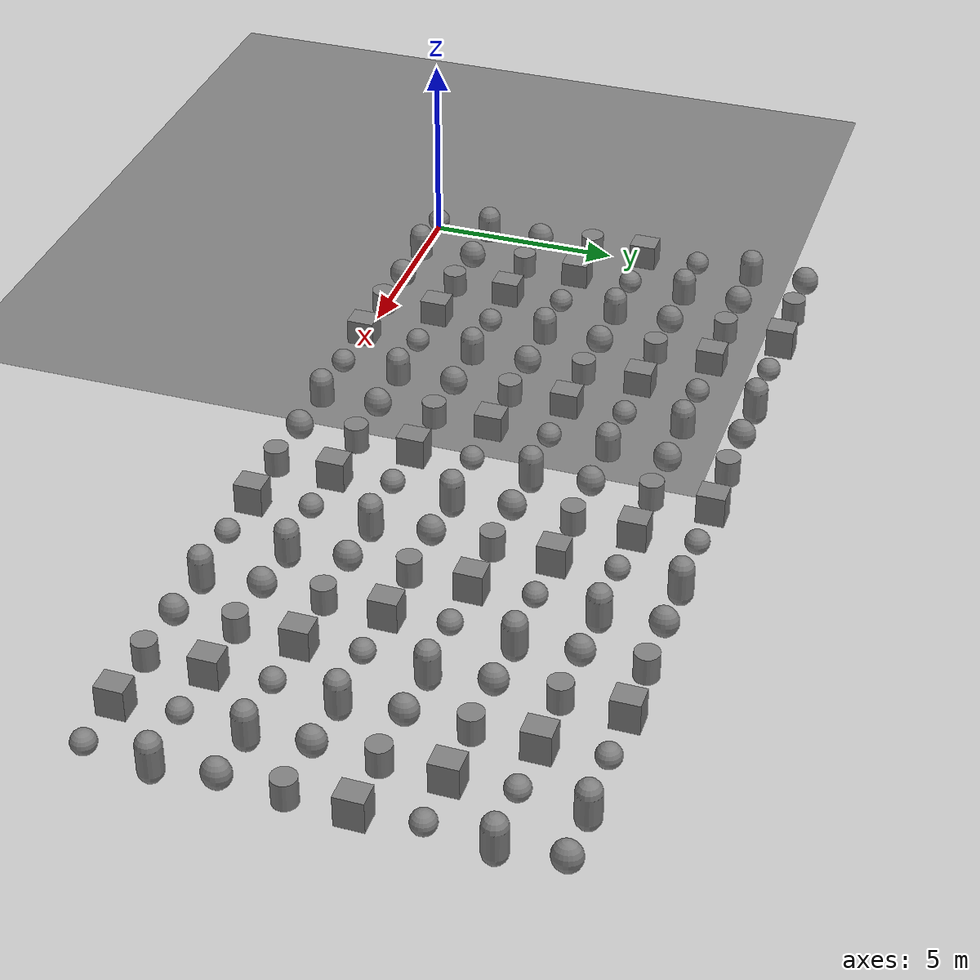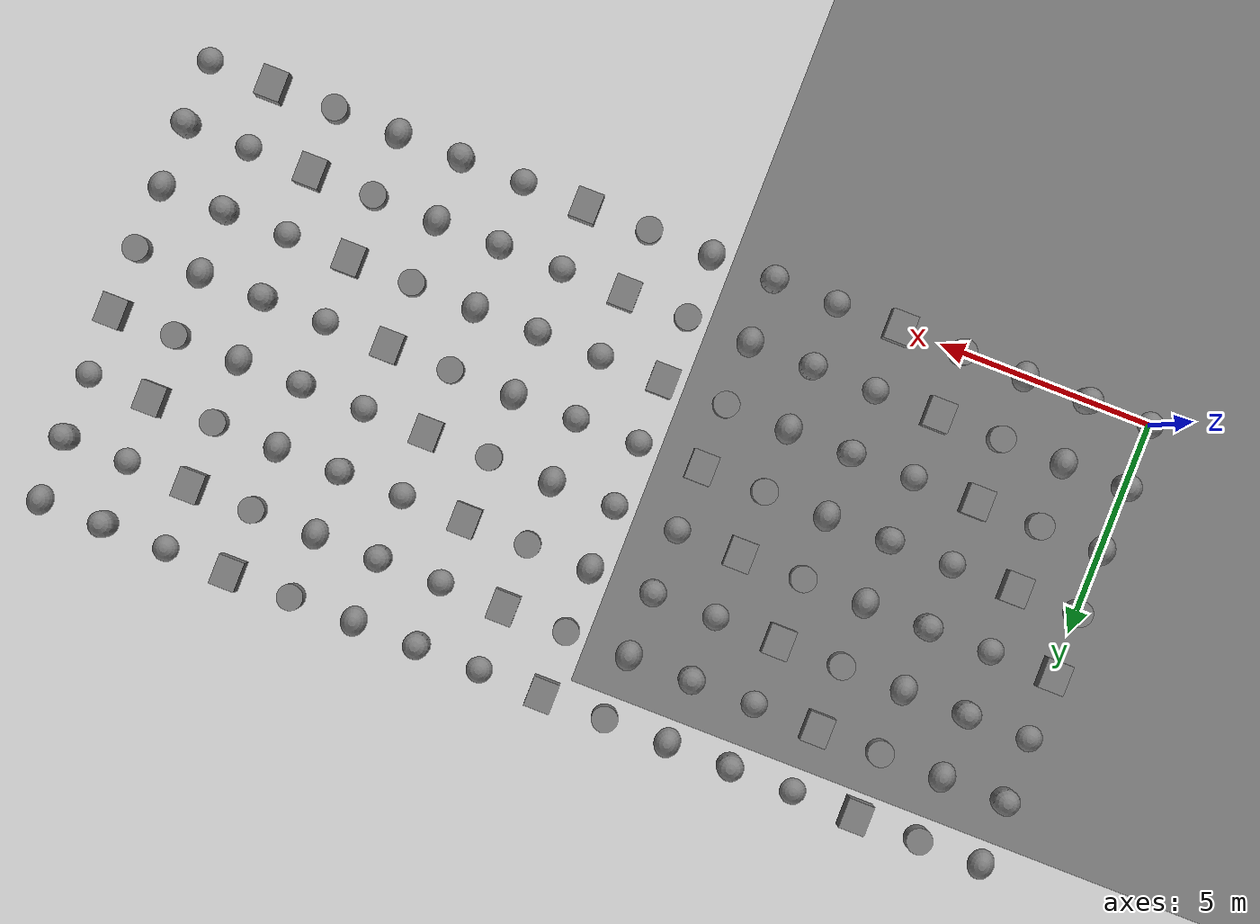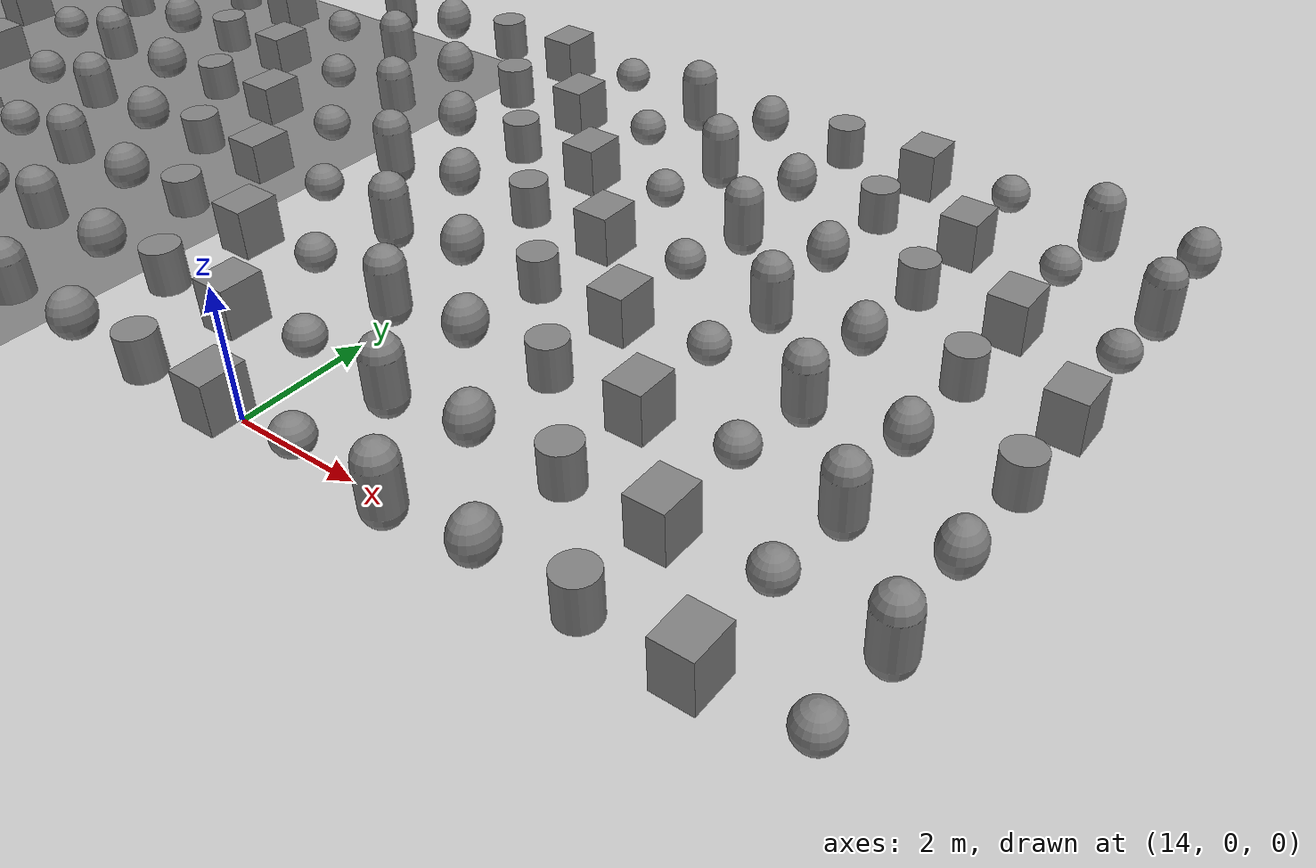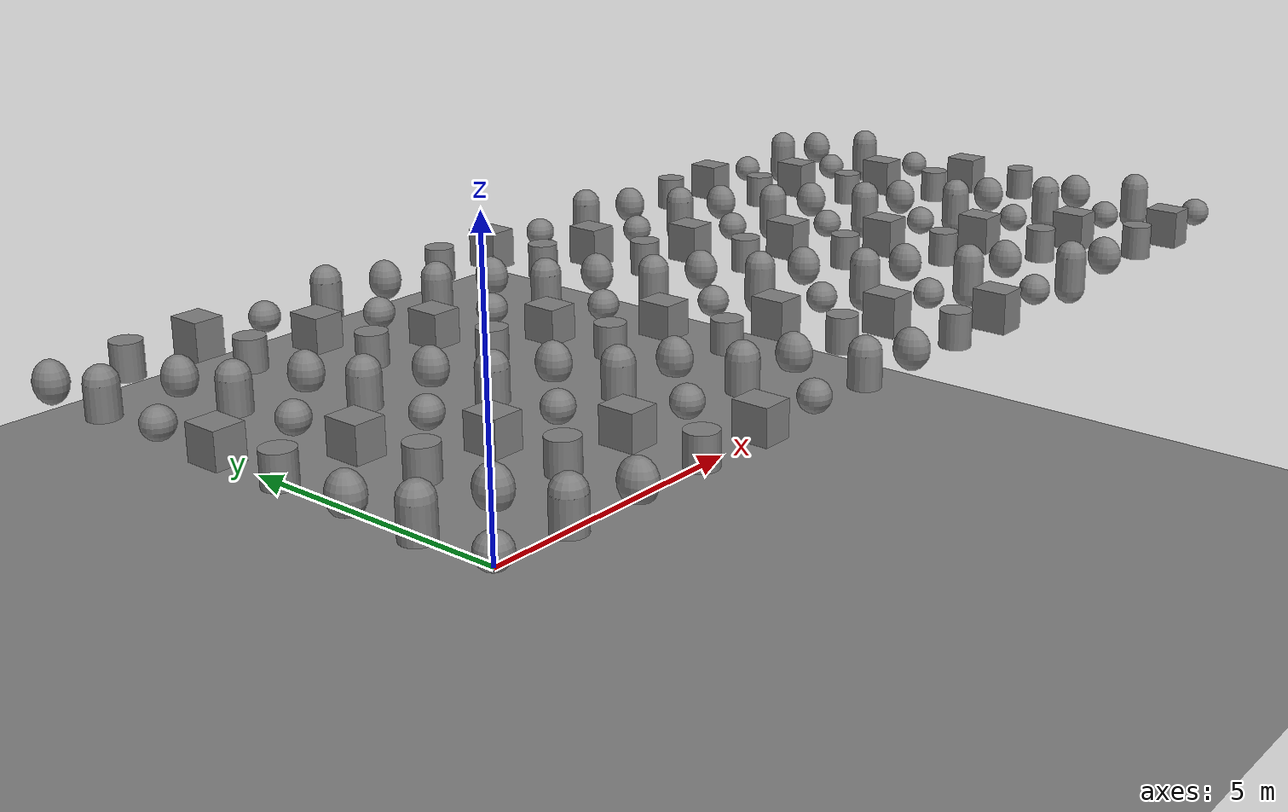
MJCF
<mujoco><worldbody><geom type="plane" size="10 10 .1"/><body pos="0.0 0.0 .25"><freejoint/><geom type="sphere" size=".3 .35 .4"/></body><body pos="1.5 0.0 .25"><freejoint/><geom type="capsule" size=".3 .35 .4"/></body><body pos="3.0 0.0 .25"><freejoint/><geom type="ellipsoid" size=".3 .35 .4"/></body><body pos="4.5 0.0 .25"><freejoint/><geom type="cylinder" size=".3 .35 .4"/></body><body pos="6.0 0.0 .25"><freejoint/><geom type="box" size=".3 .35 .4"/></body><body pos="7.5 0.0 .25"><freejoint/><geom type="sphere" size=".3 .35 .4"/></body><body pos="9.0 0.0 .25"><freejoint/><geom type="capsule" size=".3 .35 .4"/></body><body pos="10.5 0.0 .25"><freejoint/><geom type="ellipsoid" size=".3 .35 .4"/></body><body pos="12.0 0.0 .25"><freejoint/><geom type="cylinder" size=".3 .35 .4"/></body><body pos="13.5 0.0 .25"><freejoint/><geom type="box" size=".3 .35 .4"/></body><body pos="15.0 0.0 .25"><freejoint/><geom type="sphere" size=".3 .35 .4"/></body><body pos="16.5 0.0 .25"><freejoint/><geom type="capsule" size=".3 .35 .4"/></body><body pos="18.0 0.0 .25"><freejoint/><geom type="ellipsoid" size=".3 .35 .4"/></body><body pos="19.5 0.0 .25"><freejoint/><geom type="cylinder" size=".3 .35 .4"/></body><body pos="21.0 0.0 .25"><freejoint/><geom type="box" size=".3 .35 .4"/></body><body pos="22.5 0.0 .25"><freejoint/><geom type="sphere" size=".3 .35 .4"/></body><body pos="0.0 1.5 .25"><freejoint/><geom type="capsule" size=".3 .35 .4"/></body><body pos="1.5 1.5 .25"><freejoint/><geom type="ellipsoid" size=".3 .35 .4"/></body><body pos="3.0 1.5 .25"><freejoint/><geom type="cylinder" size=".3 .35 .4"/></body><body pos="4.5 1.5 .25"><freejoint/><geom type="box" size=".3 .35 .4"/></body><body pos="6.0 1.5 .25"><freejoint/><geom type="sphere" size=".3 .35 .4"/></body><body pos="7.5 1.5 .25"><freejoint/><geom type="capsule" size=".3 .35 .4"/></body><body pos="9.0 1.5 .25"><freejoint/><geom type="ellipsoid" size=".3 .35 .4"/></body><body pos="10.5 1.5 .25"><freejoint/><geom type="cylinder" size=".3 .35 .4"/></body><body pos="12.0 1.5 .25"><freejoint/><geom type="box" size=".3 .35 .4"/></body><body pos="13.5 1.5 .25"><freejoint/><geom type="sphere" size=".3 .35 .4"/></body><body pos="15.0 1.5 .25"><freejoint/><geom type="capsule" size=".3 .35 .4"/></body><body pos="16.5 1.5 .25"><freejoint/><geom type="ellipsoid" size=".3 .35 .4"/></body><body pos="18.0 1.5 .25"><freejoint/><geom type="cylinder" size=".3 .35 .4"/></body><body pos="19.5 1.5 .25"><freejoint/><geom type="box" size=".3 .35 .4"/></body><body pos="21.0 1.5 .25"><freejoint/><geom type="sphere" size=".3 .35 .4"/></body><body pos="22.5 1.5 .25"><freejoint/><geom type="capsule" size=".3 .35 .4"/></body><body pos="0.0 3.0 .25"><freejoint/><geom type="ellipsoid" size=".3 .35 .4"/></body><body pos="1.5 3.0 .25"><freejoint/><geom type="cylinder" size=".3 .35 .4"/></body><body pos="3.0 3.0 .25"><freejoint/><geom type="box" size=".3 .35 .4"/></body><body pos="4.5 3.0 .25"><freejoint/><geom type="sphere" size=".3 .35 .4"/></body><body pos="6.0 3.0 .25"><freejoint/><geom type="capsule" size=".3 .35 .4"/></body><body pos="7.5 3.0 .25"><freejoint/><geom type="ellipsoid" size=".3 .35 .4"/></body><body pos="9.0 3.0 .25"><freejoint/><geom type="cylinder" size=".3 .35 .4"/></body><body pos="10.5 3.0 .25"><freejoint/><geom type="box" size=".3 .35 .4"/></body><body pos="12.0 3.0 .25"><freejoint/><geom type="sphere" size=".3 .35 .4"/></body><body pos="13.5 3.0 .25"><freejoint/><geom type="capsule" size=".3 .35 .4"/></body><body pos="15.0 3.0 .25"><freejoint/><geom type="ellipsoid" size=".3 .35 .4"/></body><body pos="16.5 3.0 .25"><freejoint/><geom type="cylinder" size=".3 .35 .4"/></body><body pos="18.0 3.0 .25"><freejoint/><geom type="box" size=".3 .35 .4"/></body><body pos="19.5 3.0 .25"><freejoint/><geom type="sphere" size=".3 .35 .4"/></body><body pos="21.0 3.0 .25"><freejoint/><geom type="capsule" size=".3 .35 .4"/></body><body pos="22.5 3.0 .25"><freejoint/><geom type="ellipsoid" size=".3 .35 .4"/></body><body pos="0.0 4.5 .25"><freejoint/><geom type="cylinder" size=".3 .35 .4"/></body><body pos="1.5 4.5 .25"><freejoint/><geom type="box" size=".3 .35 .4"/></body><body pos="3.0 4.5 .25"><freejoint/><geom type="sphere" size=".3 .35 .4"/></body><body pos="4.5 4.5 .25"><freejoint/><geom type="capsule" size=".3 .35 .4"/></body><body pos="6.0 4.5 .25"><freejoint/><geom type="ellipsoid" size=".3 .35 .4"/></body><body pos="7.5 4.5 .25"><freejoint/><geom type="cylinder" size=".3 .35 .4"/></body><body pos="9.0 4.5 .25"><freejoint/><geom type="box" size=".3 .35 .4"/></body><body pos="10.5 4.5 .25"><freejoint/><geom type="sphere" size=".3 .35 .4"/></body><body pos="12.0 4.5 .25"><freejoint/><geom type="capsule" size=".3 .35 .4"/></body><body pos="13.5 4.5 .25"><freejoint/><geom type="ellipsoid" size=".3 .35 .4"/></body><body pos="15.0 4.5 .25"><freejoint/><geom type="cylinder" size=".3 .35 .4"/></body><body pos="16.5 4.5 .25"><freejoint/><geom type="box" size=".3 .35 .4"/></body><body pos="18.0 4.5 .25"><freejoint/><geom type="sphere" size=".3 .35 .4"/></body><body pos="19.5 4.5 .25"><freejoint/><geom type="capsule" size=".3 .35 .4"/></body><body pos="21.0 4.5 .25"><freejoint/><geom type="ellipsoid" size=".3 .35 .4"/></body><body pos="22.5 4.5 .25"><freejoint/><geom type="cylinder" size=".3 .35 .4"/></body><body pos="0.0 6.0 .25"><freejoint/><geom type="box" size=".3 .35 .4"/></body><body pos="1.5 6.0 .25"><freejoint/><geom type="sphere" size=".3 .35 .4"/></body><body pos="3.0 6.0 .25"><freejoint/><geom type="capsule" size=".3 .35 .4"/></body><body pos="4.5 6.0 .25"><freejoint/><geom type="ellipsoid" size=".3 .35 .4"/></body><body pos="6.0 6.0 .25"><freejoint/><geom type="cylinder" size=".3 .35 .4"/></body><body pos="7.5 6.0 .25"><freejoint/><geom type="box" size=".3 .35 .4"/></body><body pos="9.0 6.0 .25"><freejoint/><geom type="sphere" size=".3 .35 .4"/></body><body pos="10.5 6.0 .25"><freejoint/><geom type="capsule" size=".3 .35 .4"/></body><body pos="12.0 6.0 .25"><freejoint/><geom type="ellipsoid" size=".3 .35 .4"/></body><body pos="13.5 6.0 .25"><freejoint/><geom type="cylinder" size=".3 .35 .4"/></body><body pos="15.0 6.0 .25"><freejoint/><geom type="box" size=".3 .35 .4"/></body><body pos="16.5 6.0 .25"><freejoint/><geom type="sphere" size=".3 .35 .4"/></body><body pos="18.0 6.0 .25"><freejoint/><geom type="capsule" size=".3 .35 .4"/></body><body pos="19.5 6.0 .25"><freejoint/><geom type="ellipsoid" size=".3 .35 .4"/></body><body pos="21.0 6.0 .25"><freejoint/><geom type="cylinder" size=".3 .35 .4"/></body><body pos="22.5 6.0 .25"><freejoint/><geom type="box" size=".3 .35 .4"/></body><body pos="0.0 7.5 .25"><freejoint/><geom type="sphere" size=".3 .35 .4"/></body><body pos="1.5 7.5 .25"><freejoint/><geom type="capsule" size=".3 .35 .4"/></body><body pos="3.0 7.5 .25"><freejoint/><geom type="ellipsoid" size=".3 .35 .4"/></body><body pos="4.5 7.5 .25"><freejoint/><geom type="cylinder" size=".3 .35 .4"/></body><body pos="6.0 7.5 .25"><freejoint/><geom type="box" size=".3 .35 .4"/></body><body pos="7.5 7.5 .25"><freejoint/><geom type="sphere" size=".3 .35 .4"/></body><body pos="9.0 7.5 .25"><freejoint/><geom type="capsule" size=".3 .35 .4"/></body><body pos="10.5 7.5 .25"><freejoint/><geom type="ellipsoid" size=".3 .35 .4"/></body><body pos="12.0 7.5 .25"><freejoint/><geom type="cylinder" size=".3 .35 .4"/></body><body pos="13.5 7.5 .25"><freejoint/><geom type="box" size=".3 .35 .4"/></body><body pos="15.0 7.5 .25"><freejoint/><geom type="sphere" size=".3 .35 .4"/></body><body pos="16.5 7.5 .25"><freejoint/><geom type="capsule" size=".3 .35 .4"/></body><body pos="18.0 7.5 .25"><freejoint/><geom type="ellipsoid" size=".3 .35 .4"/></body><body pos="19.5 7.5 .25"><freejoint/><geom type="cylinder" size=".3 .35 .4"/></body><body pos="21.0 7.5 .25"><freejoint/><geom type="box" size=".3 .35 .4"/></body><body pos="22.5 7.5 .25"><freejoint/><geom type="sphere" size=".3 .35 .4"/></body><body pos="0.0 9.0 .25"><freejoint/><geom type="capsule" size=".3 .35 .4"/></body><body pos="1.5 9.0 .25"><freejoint/><geom type="ellipsoid" size=".3 .35 .4"/></body><body pos="3.0 9.0 .25"><freejoint/><geom type="cylinder" size=".3 .35 .4"/></body><body pos="4.5 9.0 .25"><freejoint/><geom type="box" size=".3 .35 .4"/></body><body pos="6.0 9.0 .25"><freejoint/><geom type="sphere" size=".3 .35 .4"/></body><body pos="7.5 9.0 .25"><freejoint/><geom type="capsule" size=".3 .35 .4"/></body><body pos="9.0 9.0 .25"><freejoint/><geom type="ellipsoid" size=".3 .35 .4"/></body><body pos="10.5 9.0 .25"><freejoint/><geom type="cylinder" size=".3 .35 .4"/></body><body pos="12.0 9.0 .25"><freejoint/><geom type="box" size=".3 .35 .4"/></body><body pos="13.5 9.0 .25"><freejoint/><geom type="sphere" size=".3 .35 .4"/></body><body pos="15.0 9.0 .25"><freejoint/><geom type="capsule" size=".3 .35 .4"/></body><body pos="16.5 9.0 .25"><freejoint/><geom type="ellipsoid" size=".3 .35 .4"/></body><body pos="18.0 9.0 .25"><freejoint/><geom type="cylinder" size=".3 .35 .4"/></body><body pos="19.5 9.0 .25"><freejoint/><geom type="box" size=".3 .35 .4"/></body><body pos="21.0 9.0 .25"><freejoint/><geom type="sphere" size=".3 .35 .4"/></body><body pos="22.5 9.0 .25"><freejoint/><geom type="capsule" size=".3 .35 .4"/></body><body pos="0.0 10.5 .25"><freejoint/><geom type="ellipsoid" size=".3 .35 .4"/></body><body pos="1.5 10.5 .25"><freejoint/><geom type="cylinder" size=".3 .35 .4"/></body><body pos="3.0 10.5 .25"><freejoint/><geom type="box" size=".3 .35 .4"/></body><body pos="4.5 10.5 .25"><freejoint/><geom type="sphere" size=".3 .35 .4"/></body><body pos="6.0 10.5 .25"><freejoint/><geom type="capsule" size=".3 .35 .4"/></body><body pos="7.5 10.5 .25"><freejoint/><geom type="ellipsoid" size=".3 .35 .4"/></body><body pos="9.0 10.5 .25"><freejoint/><geom type="cylinder" size=".3 .35 .4"/></body><body pos="10.5 10.5 .25"><freejoint/><geom type="box" size=".3 .35 .4"/></body><body pos="12.0 10.5 .25"><freejoint/><geom type="sphere" size=".3 .35 .4"/></body><body pos="13.5 10.5 .25"><freejoint/><geom type="capsule" size=".3 .35 .4"/></body><body pos="15.0 10.5 .25"><freejoint/><geom type="ellipsoid" size=".3 .35 .4"/></body><body pos="16.5 10.5 .25"><freejoint/><geom type="cylinder" size=".3 .35 .4"/></body><body pos="18.0 10.5 .25"><freejoint/><geom type="box" size=".3 .35 .4"/></body><body pos="19.5 10.5 .25"><freejoint/><geom type="sphere" size=".3 .35 .4"/></body><body pos="21.0 10.5 .25"><freejoint/><geom type="capsule" size=".3 .35 .4"/></body><body pos="22.5 10.5 .25"><freejoint/><geom type="ellipsoid" size=".3 .35 .4"/></body></worldbody></mujoco>
